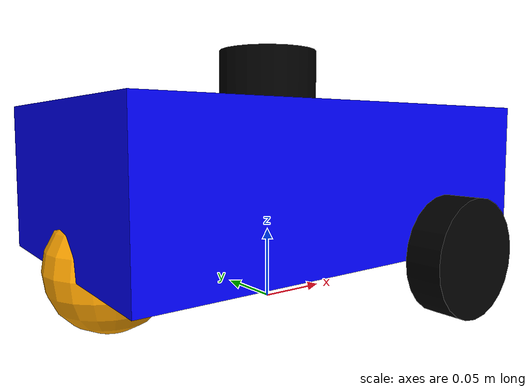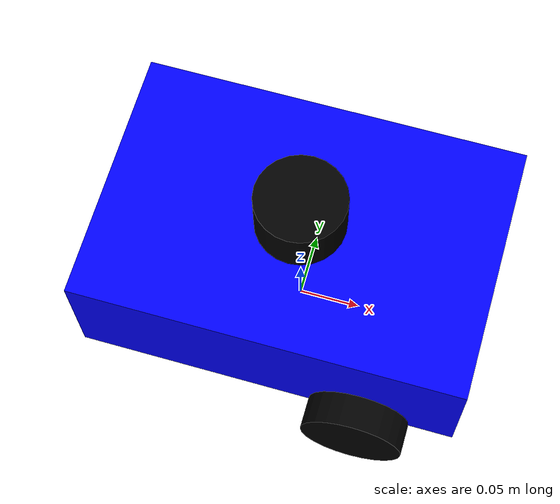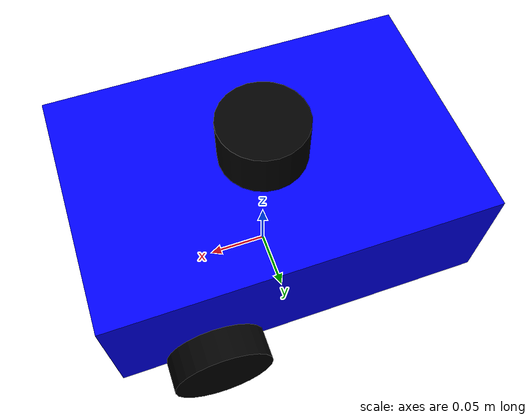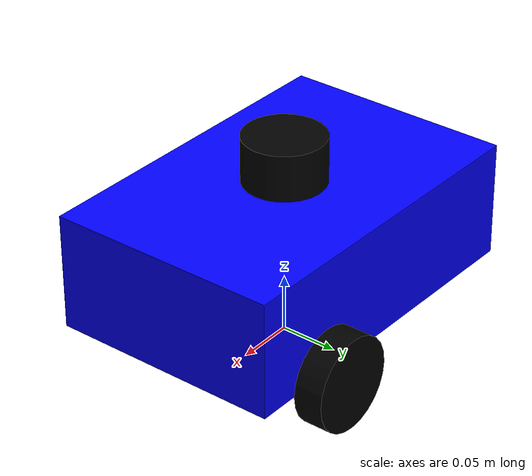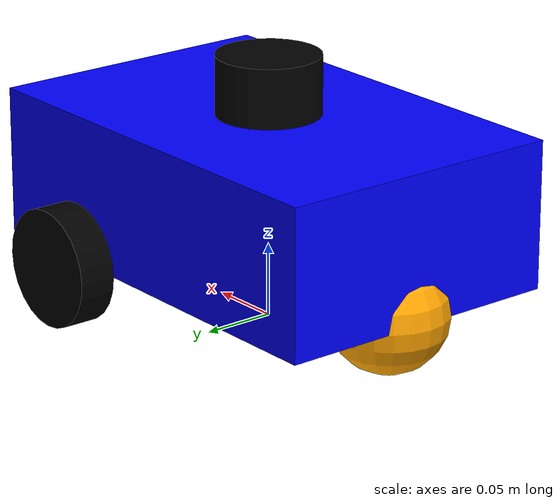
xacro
<?xml version="1.0"?>

<robot name = "obstacle_robot" xmlns:xacro ="http://www.ros.org/wiki/xacro" >
    <xacro:include filename = "material.xacro"/>
    <xacro:include filename = "obstacle_robot.xacro"/>
    <xacro:include filename = "obstacle_gazebo.xacro"/>
</robot>

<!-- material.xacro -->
<!--==================================================================
This file contains the colors used in each part of the robot
======================================================================-->

<robot xmlns:xacro="http://www.ros.org/wiki/xacro">
    <material name = "black">
        <color rgba = " 0 0 0 1"/>
    </material>

    <material name = "orange">
        <color rgba = "1 0.647 0 1"/>
    </material>

    <material name = "blue">
        <color rgba = "0 0 1 1"/>
    </material>
</robot>

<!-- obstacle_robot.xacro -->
<robot name = "obstacle_robot" xmlns:xacro="http://www.ros.org/wiki/xacro">

<!--===================System Variables (SI units)=========================-->
<xacro:property name ="box_mass" value = "2.5"/>
<xacro:property name ="box_length" value = "0.3"/>
<xacro:property name ="box_width" value = "0.2"/>
<xacro:property name ="box_height" value = "0.1"/>

<xacro:property name ="wheel_mass" value = "0.25"/>
<xacro:property name ="wheel_radius" value = "0.04"/>
<xacro:property name ="wheel_length" value = "0.025"/>

<xacro:property name ="caster_mass" value = "0.05"/>
<xacro:property name ="caster_radius" value = "0.04"/>

<xacro:property name ="lidar_mass" value = "0.15"/>
<xacro:property name ="lidar_radius" value = "0.035"/>
<xacro:property name ="lidar_length" value = "0.04"/>

<!--=================Inertial Xacros for the components===================-->
<xacro:macro name = "box_inertia" params ="m l w h xyz rpy">
    <inertial>
        <origin xyz = "${xyz}" rpy="${rpy}"/>
        <mass value = "${m}"/>
        <inertia ixx="${(m/12.0) * (w*w + h*h)}" ixy="0" ixz="0"
                     iyy="${(m/12.0) * (l*l + h*h)}" iyz="0"
                     izz="${(m/12.0) * (l*l + w*w)}" />
    </inertial>
</xacro:macro>

<xacro:macro name = "wheel_inertia" params = "m r l xyz rpy">
    <inertial>
        <origin xyz = "${xyz}" rpy = "${rpy}"/>
        <mass value = "${m}"/>
        <inertia ixx="${(m/12.0) * (3.0*r*r + l*l)}" ixy="0" ixz="0"
                     iyy="${(m/12.0) * (3.0*r*r + l*l)}" iyz="0"
                     izz="${(m/2.0) * (r*r)}" />
    </inertial>
</xacro:macro>

<xacro:macro name = "caster_inertia" params = "m r xyz rpy">
    <inertial>
        <origin xyz = "${xyz}" rpy = "${rpy}"/>
        <mass value = "${m}"/>
        <inertia ixx="${(2.0/5.0) * m * r * r}" ixy="0" ixz="0"
                     iyy="${(2.0/5.0) * m * r * r}" iyz="0"
                     izz="${(2.0/5.0) * m * r * r}" />
    </inertial>
</xacro:macro>

<!--==========================Link Xacros=================================-->
<xacro:macro name = "generate_wheel" params = "prefix">
    <link name = "${prefix}_link">
        <visual>
            <geometry>
                <cylinder length = "${wheel_length}" radius = "${wheel_radius}"/>
            </geometry>
            <origin xyz = "0 0 0" rpy = "0 0 0"/>
            <material name = "black"/>
        </visual>

        <collision>
            <geometry>
                <cylinder length = "${wheel_length}" radius = "${wheel_radius}"/>
            </geometry>
            <origin xyz = "0 0 0" rpy = "0 0 0"/>
        </collision>

        <xacro:wheel_inertia m = "${wheel_mass}" r = "${wheel_radius}" l = "${wheel_length}"
        xyz = " 0 0 0 " rpy = "0 0 0 "/>
    </link>
</xacro:macro>

<!--===============================Link Defenitions========================-->
<link name="base_link"/>

<!--box link(visual / collision / inertial data)-->
<link name ="box_link">
    <visual>
        <geometry>
            <box size = "${box_length} ${box_width} ${box_height}"/>
        </geometry>
        <origin xyz = " 0 0 0 " rpy = " 0 0 0 "/>
        <material name = "blue"/>
    </visual>

    <collision>
        <geometry>
            <box size = "${box_length} ${box_width} ${box_height}"/>
        </geometry>
        <origin xyz = " 0 0 0 " rpy = " 0 0 0 "/>
    </collision>

    <xacro:box_inertia m = "${box_mass}" l = "${box_length}" w = "${box_width}"
     h = "${box_height}" xyz = " 0 0 0 " rpy = " 0 0 0"  />
</link>

<link name ="lidar_link">
    <visual>
        <geometry>
            <cylinder length = "${lidar_length}" radius = "${lidar_radius}"/>
        </geometry>
        <origin xyz = " 0 0 0" rpy = " 0 0 0"/>
        <material name = "black"/>
    </visual>

    <collision>
            <geometry>
            <cylinder length = "${lidar_length}" radius = "${lidar_radius}"/>
        </geometry>
        <origin xyz = " 0 0 0" rpy = " 0 0 0"/>
    </collision>

    <xacro:wheel_inertia m = "${lidar_mass}" r = "${lidar_radius}" l = "${lidar_length}"
    xyz = " 0 0 0 " rpy = " 0 0 0"/>
</link>

<!--The Caster wheel link (spherical)-->
<link name = "caster_wheel_link">
    <visual>
        <geometry>
            <sphere radius = "${caster_radius}"/>
        </geometry>
        <origin xyz = " 0 0 0 " rpy = " 0 0 0 "/>
        <material name = "orange"/>
    </visual>

    <collision>
    <geometry>
            <sphere radius = "${caster_radius}"/>
        </geometry>
        <origin xyz = " 0 0 0 " rpy = " 0 0 0 "/>
    </collision>

    <xacro:caster_inertia m = "${caster_mass}" r = "${caster_radius}" xyz = " 0 0 0 " rpy = " 0 0 0"/>
</link>

<!--The two wheels using the xacro made before-->
<xacro:generate_wheel prefix = "wheel1"/>

<xacro:generate_wheel prefix = "wheel2"/>

<!--=================================Joint Defenitions===============================-->
<!--Joint to trasnform from the box_link to the world's base_link-->
<joint name="base_to_box_joint" type="fixed">
    <parent link="base_link"/>
    <child link="box_link"/>
    <origin xyz="0 0 ${box_height/2 + wheel_radius}" rpy="0 0 0"/>
</joint>

<!--Joint to transform wheel1 to the base box_link-->
<joint name = "box_to_wheel1_link" type = "continuous">
    <parent link = "box_link"/>
    <child link = "wheel1_link"/>
    <origin xyz = " ${box_length / 4} ${box_width / 2 + wheel_length / 2} -${box_height / 2} " rpy = " ${pi/2} 0 0"/>
    <axis xyz="0 0 1"/>
</joint>

<!--Joint to transform the second wheel to the base_link-->
<joint name = "box_to_wheel2_link" type  = "continuous">
    <parent link = "box_link"/>
    <child link = "wheel2_link"/>
    <origin xyz = " ${box_length / 4} -${box_width / 2 + wheel_length / 2} -${box_height / 2}" rpy = " ${-pi / 2} 0 0 "/> <!--Because by default the cyulinder is alligned on the z-axis-->
    <axis xyz="0 0 1"/>
</joint>

<!--Joint transforming the caster wheel with the box_link-->
<joint name = "box_to_caster_link" type ="fixed">
    <parent link = "box_link"/>
    <child link = "caster_wheel_link"/>
    <origin xyz = "-${box_length / 2.5} 0 -${box_height / 2}" rpy = " 0 0 0"/>
</joint>

<!--Joint transforming the laser to the box_link-->
<joint name = "box_to_lidar_link" type ="fixed">
    <parent link = "box_link"/>
    <child link = "lidar_link"/>
    <origin xyz = "0 0 ${(box_height / 2.0) + (lidar_length / 2.0)}" rpy = " 0 0 0"/>
</joint>

</robot>
